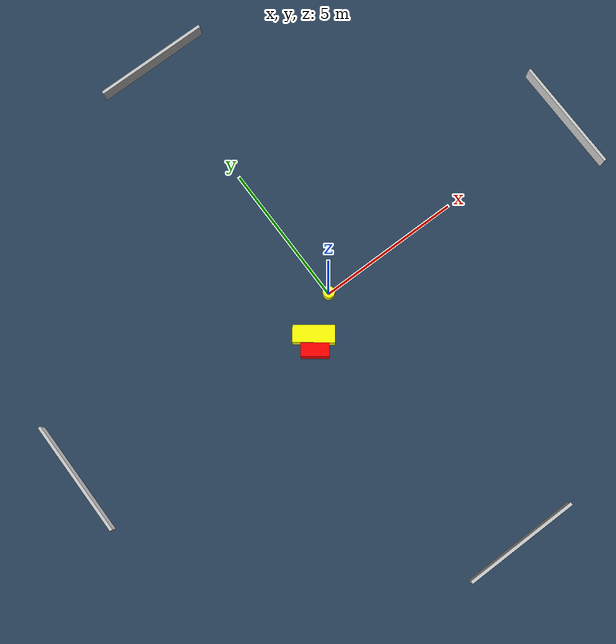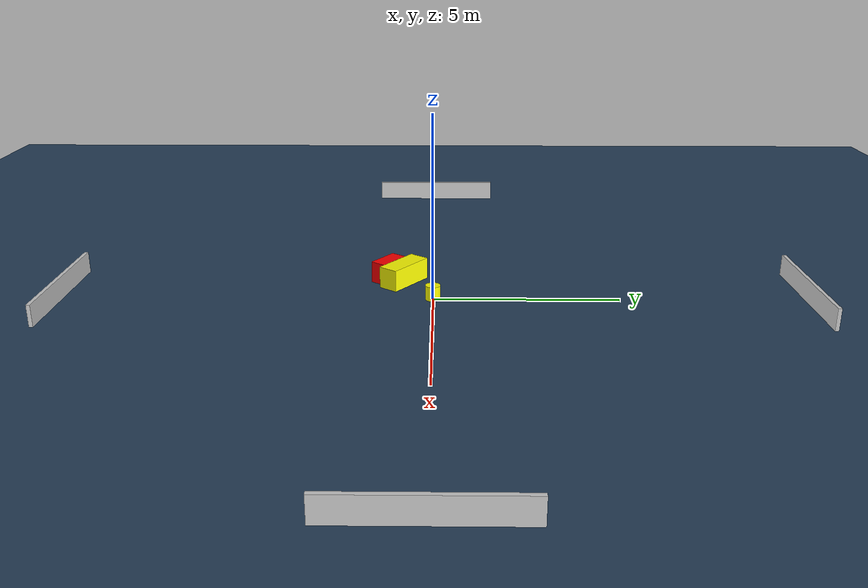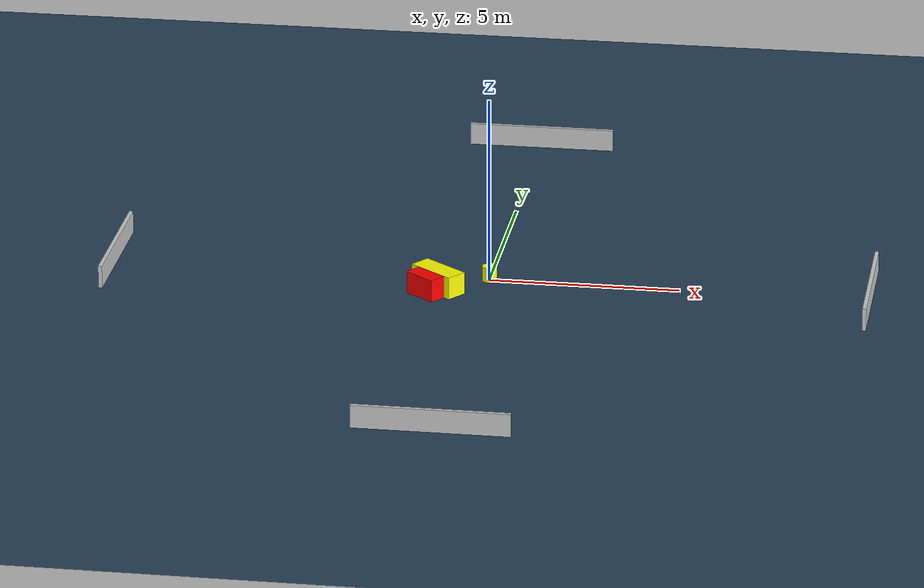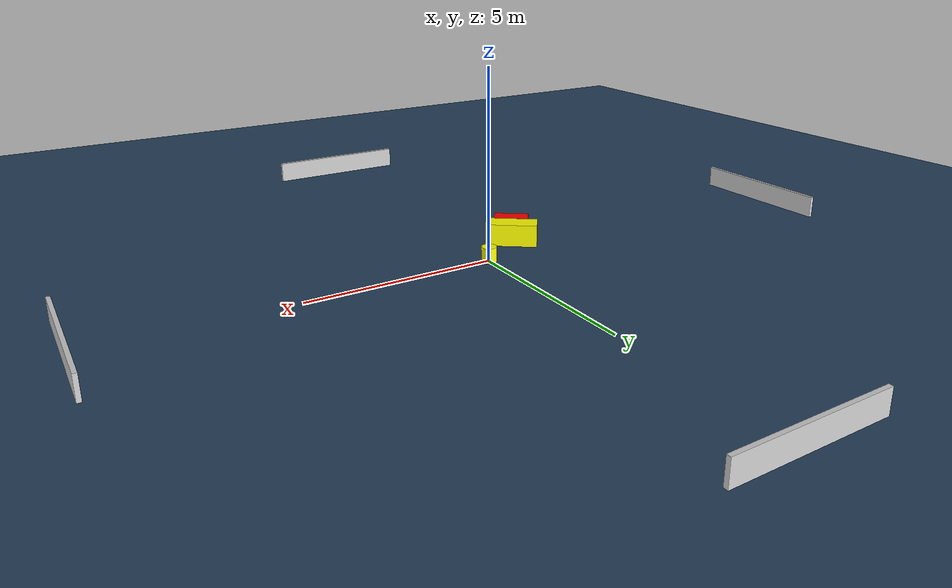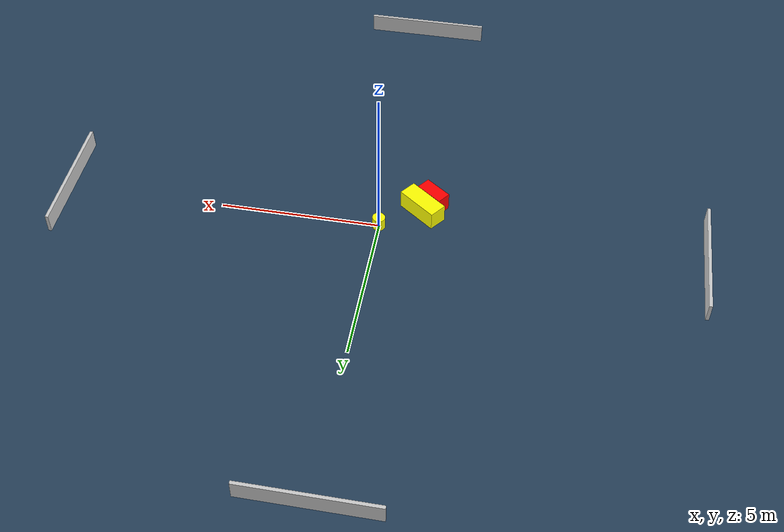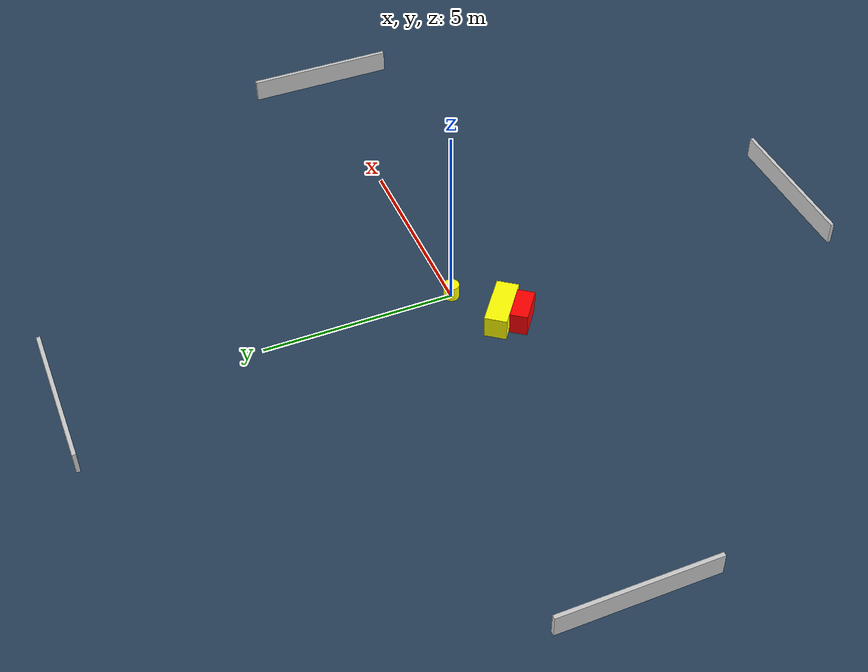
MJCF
<?xml version="1.0" ?>
<mujoco model="generated_environment">
  <option timestep="0.01" integrator="RK4" cone="elliptic"/>
  <default>
    <geom density="1"/>
  </default>
  <asset>
    <texture builtin="gradient" height="3072" name="skybox" rgb1="0.3 0.5 0.7" rgb2="0 0 0" type="skybox" width="512"/>
    <texture builtin="checker" height="300" name="groundplane" rgb1="0.2 0.3 0.4" rgb2="0.1 0.2 0.3" type="2d" width="300"/>
    <material name="groundplane" reflectance="0.2" texrepeat="5 5" texture="groundplane"/>
  </asset>
  <worldbody>
    <light dir="0 0 -1" directional="true" pos="0 0 1.5"/>
    <geom condim="3" friction="0.5 0.005 0.001" material="groundplane" name="floor" pos="0 0 0" size="0 0 0.05" type="plane"/>
    <body name="walls">
      <geom name="wall_1" condim="4" pos="-10.0 0.0 0.3" rgba="0.800000011920929 0.800000011920929 0.800000011920929 1.0" size="0.05 2.0 0.3" type="box"/>
      <geom name="wall_2" condim="4" pos="10.0 0.0 0.3" rgba="0.800000011920929 0.800000011920929 0.800000011920929 1.0" size="0.05 2.0 0.3" type="box"/>
      <geom name="wall_3" condim="4" pos="0.0 -10.0 0.3" rgba="0.800000011920929 0.800000011920929 0.800000011920929 1.0" size="2.0 0.05 0.3" type="box"/>
      <geom name="wall_4" condim="4" pos="0.0 10.0 0.3" rgba="0.800000011920929 0.800000011920929 0.800000011920929 1.0" size="2.0 0.05 0.3" type="box"/>
    </body>
    <body name="robot">
      <joint name="joint_x" type="slide" pos="0 0 0" axis="1 0 0"/>
      <joint name="joint_y" type="slide" pos="0 0 0" axis="0 1 0"/>
      <geom name="robot" type="cylinder" pos="0.0 0.0 0.2" size="0.2 0.2 0.0" mass="5.0" friction="1.0 0.005 0.0001" condim="4" rgba="1.0 1.0 0.0 1.0"/>
    </body>
    <body name="obstacle_1_movable">
      <geom name="obstacle_1_movable" condim="4" pos="-1.2358490205233275 -0.8316519468318694 0.3" euler="0 0 52.7741066656819" friction="0.0 0.005 0.001" rgba="1.0 1.0 0.0 1.0" size="0.28571230259878094 0.6913925333615965 0.3" type="box" mass="0.1"/>
      <joint type="free"/>
    </body>
    <body name="obstacle_2_static">
      <geom name="obstacle_2_static" condim="4" pos="-1.5122228182894426 -1.2708035062015406 0.3" euler="0 0 323.2584594195365" friction="0.0 0.005 0.001" rgba="1.0 0.0 0.0 1.0" size="0.4629767251275664 0.22509400514997058 0.3" type="box"/>
    </body>
  </worldbody>
  <actuator>
    <motor name="actuator_x" joint="joint_x" gear="1" ctrlrange="-1 1"/>
    <motor name="actuator_y" joint="joint_y" gear="1" ctrlrange="-1 1"/>
  </actuator>
</mujoco>
